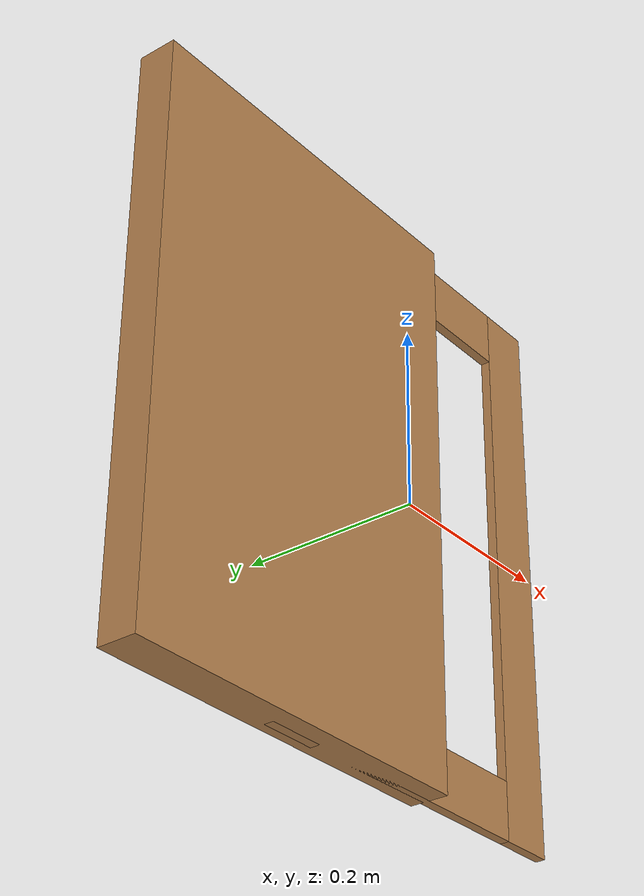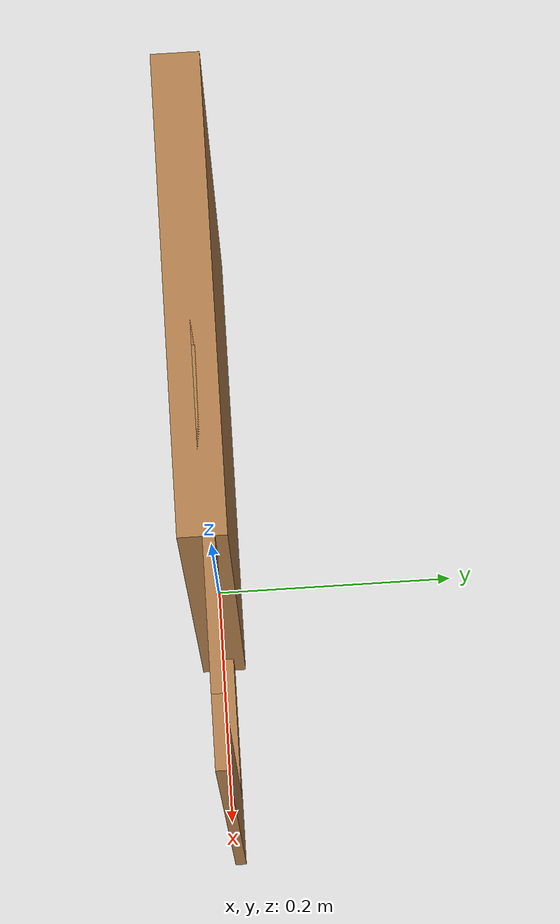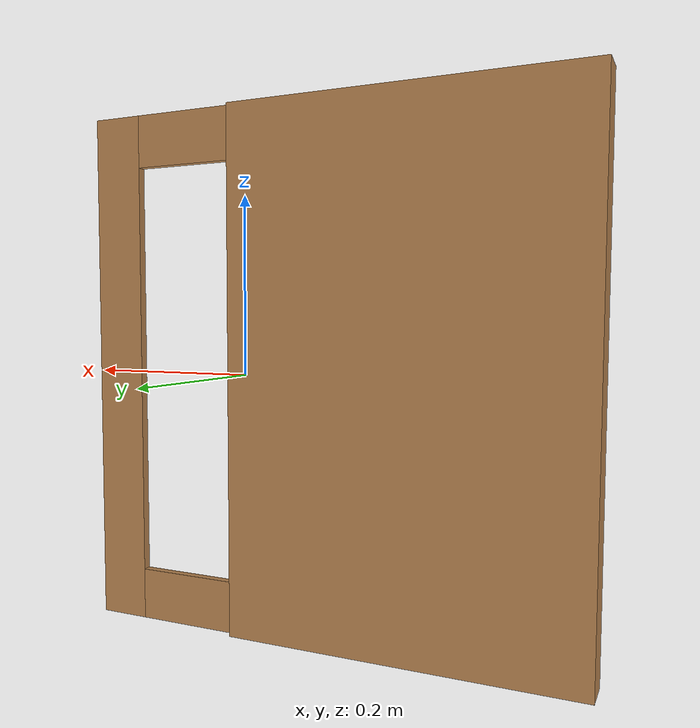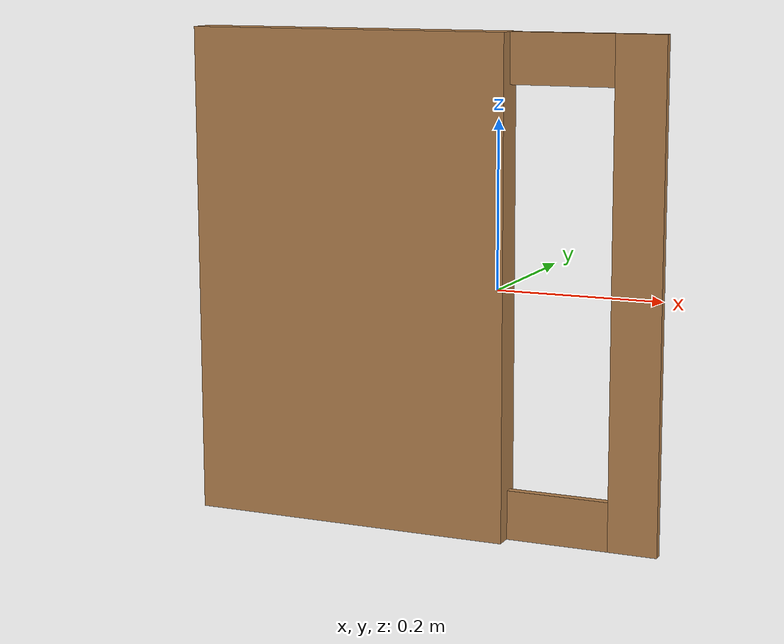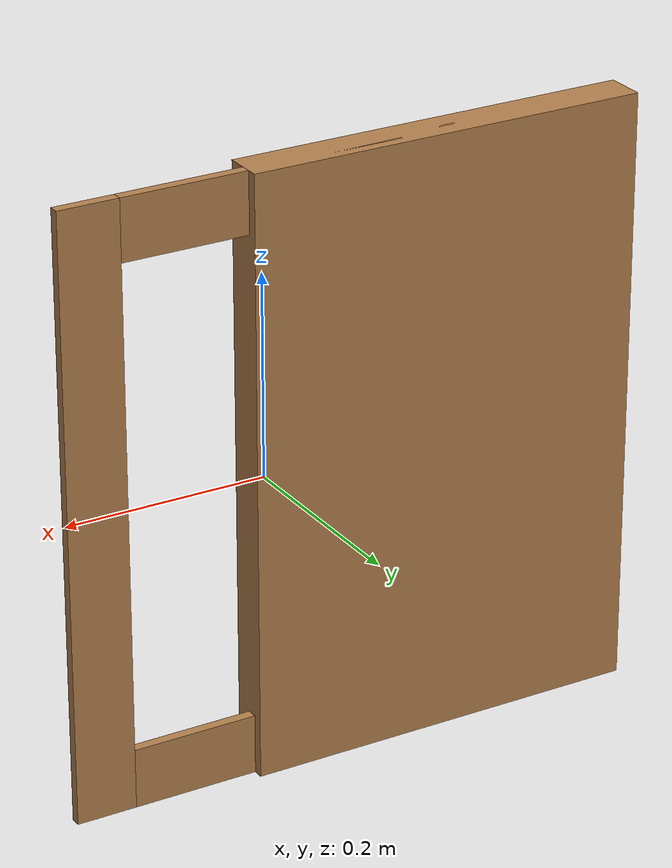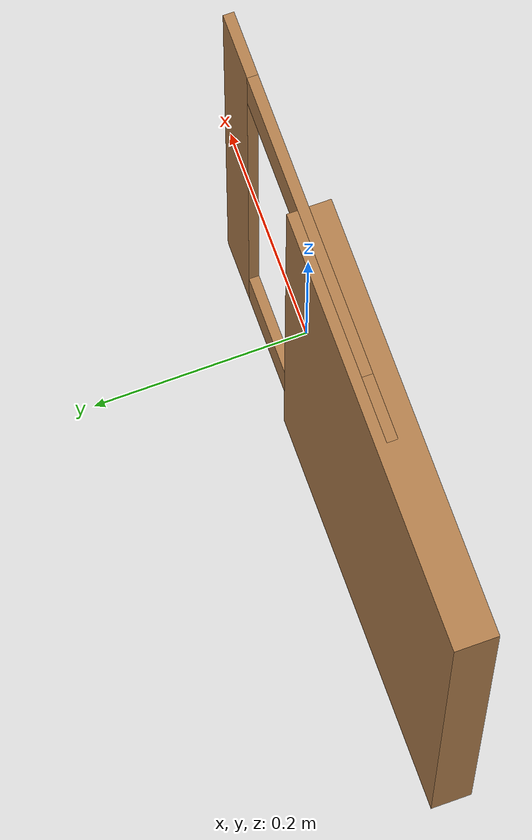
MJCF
<mujoco model="cab_panel_slab">
  <compiler angle="radian"/>
  <asset>
    <texture file="../../../textures/wood/dark_wood_parquet.png" type="2d" name="tex"/>
    <material name="mat" reflectance="0.1" shininess="0.1" texrepeat="4 4" texuniform="true" texture="tex"/>
    <!-- Potentially flipping the texture to make trims more pronounced -->
  </asset>
  <default>
    <default class="cab">
      <geom group="0" density="10"/>
    </default>
  </default>
  <worldbody>
    <body>
      <body name="object">
        <geom pos="-0.185 -.005 0" size="0.2 0.3 0.02" type="box" material="mat" class="cab" name="door" euler="1.5708 0 0"/>
        <geom pos="-0.185 -.005 0" size="0.2 0.3 0.02" type="box" material="mat" class="cab" name="door_raised" euler="1.5708 0 0"/>
        <body name="trims">
          <geom pos="0 0 0.27" size="0.14 0.03 0.005" type="box" material="mat" class="cab" name="trim_top" euler="1.5708 0 0"/>
          <geom pos="0 0 -0.27" size="0.14 0.03 0.005" type="box" material="mat" class="cab" name="trim_bottom" euler="1.5708 0 0"/>
          <geom pos="-0.17 0 0" size="0.03 0.3 0.005" type="box" material="mat" class="cab" name="trim_left" euler="1.5708 0 0"/>
          <geom pos="0.17 0 0" size="0.03 0.3 0.005" type="box" material="mat" class="cab" name="trim_right" euler="1.5708 0 0"/>
        </body>
      </body>
    </body>
  </worldbody>
</mujoco>
